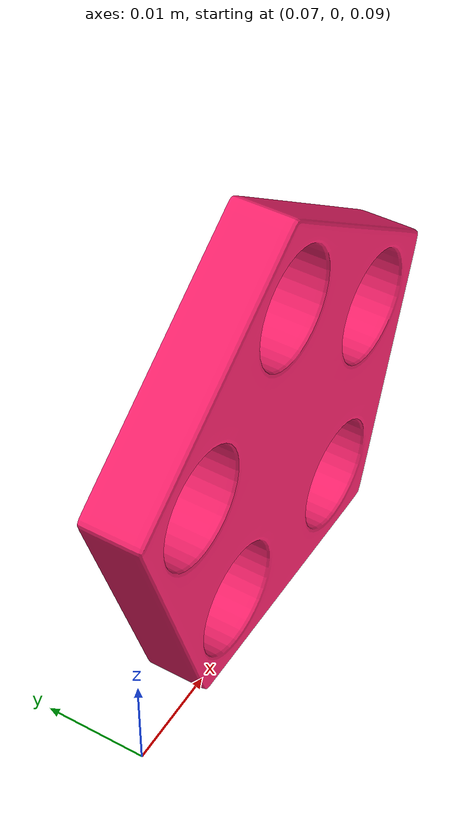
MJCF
<mujoco model="pentagon">
  <compiler angle="radian" meshdir="assets" texturedir="assets" autolimits="true"/>
  <default>
    <default class="visual">
      <geom group="2" type="mesh" contype="0" conaffinity="0"/>
    </default>
    <default class="collision">
      <geom group="3" type="mesh" mass="0" />
    </default>
    <default class="target_area">
      <geom group="3" type="mesh" contype="0" conaffinity="0" friction="0 0 0" solimp="0.99 0.99 0.000001" solref="0.000001 1" />
    </default>
  </default>
  <asset>
    <material name="Color_Pink" specular="0.5" shininess="0.25" rgba="1.000000 0.140523 0.438079 1.000000"/>
    <mesh file="pentagon.obj"/>
    <mesh file="pentagon_collision_0.obj"/>
    <mesh file="pentagon_collision_1.obj"/>
    <mesh file="pentagon_collision_2.obj"/>
    <mesh file="pentagon_collision_3.obj"/>
    <mesh file="pentagon_collision_4.obj"/>
    <mesh file="pentagon_collision_5.obj"/>
    <mesh file="pentagon_collision_6.obj"/>
    <mesh file="pentagon_collision_7.obj"/>
    <mesh file="pentagon_collision_8.obj"/>
    <mesh file="pentagon_collision_9.obj"/>
    <mesh file="pentagon_collision_10.obj"/>
    <mesh file="pentagon_collision_11.obj"/>
    <mesh file="pentagon_collision_12.obj"/>
    <mesh file="pentagon_collision_13.obj"/>
    <mesh file="pentagon_collision_14.obj"/>
    <mesh file="pentagon_collision_15.obj"/>
    <mesh file="pentagon_collision_16.obj"/>
    <mesh file="pentagon_collision_17.obj"/>
    <mesh file="pentagon_collision_18.obj"/>
    <mesh file="pentagon_collision_19.obj"/>
    <mesh file="pentagon_collision_20.obj"/>
    <mesh file="pentagon_collision_21.obj"/>
    <mesh file="pentagon_collision_22.obj"/>
    <mesh file="pentagon_collision_23.obj"/>
    <mesh file="pentagon_collision_24.obj"/>
    <mesh file="pentagon_collision_25.obj"/>
    <mesh file="pentagon_collision_26.obj"/>
    <mesh file="pentagon_collision_27.obj"/>
    <mesh file="pentagon_collision_28.obj"/>
    <mesh file="pentagon_collision_29.obj"/>
    <mesh file="pentagon_collision_30.obj"/>
    <mesh file="pentagon_collision_31.obj"/>
    <mesh file="pentagon_collision_32.obj"/>
    <mesh file="pentagon_collision_33.obj"/>
    <mesh file="pentagon_collision_34.obj"/>
    <mesh file="pentagon_collision_35.obj"/>
    <mesh file="pentagon_collision_36.obj"/>
    <mesh file="pentagon_collision_37.obj"/>
    <mesh file="pentagon_collision_38.obj"/>
    <mesh file="pentagon_collision_39.obj"/>
    <mesh file="pentagon_collision_40.obj"/>
    <mesh file="pentagon_collision_41.obj"/>
    <mesh file="pentagon_collision_42.obj"/>
    <mesh file="pentagon_collision_43.obj"/>
    <mesh file="pentagon_collision_44.obj"/>
    <mesh file="pentagon_collision_45.obj"/>
    <mesh file="pentagon_collision_46.obj"/>
    <mesh file="pentagon_collision_47.obj"/>
    <mesh file="pentagon_collision_48.obj"/>
    <mesh file="pentagon_collision_49.obj"/>
    <mesh file="pentagon_collision_50.obj"/>
    <mesh file="pentagon_collision_51.obj"/>
    <mesh file="pentagon_collision_52.obj"/>
    <mesh file="pentagon_collision_53.obj"/>
    <mesh file="pentagon_collision_54.obj"/>
    <mesh file="pentagon_collision_55.obj"/>
    <mesh file="pentagon_collision_56.obj"/>
    <mesh file="pentagon_collision_57.obj"/>
    <mesh file="pentagon_collision_58.obj"/>
    <mesh file="pentagon_collision_59.obj"/>
    <mesh file="pentagon_collision_60.obj"/>
    <mesh file="pentagon_collision_61.obj"/>
    <mesh file="pentagon_collision_62.obj"/>
    <mesh file="pentagon_collision_63.obj"/>
    <mesh file="pentagon_collision_64.obj"/>
    <mesh file="pentagon_collision_65.obj"/>
    <mesh file="pentagon_collision_66.obj"/>
    <mesh file="pentagon_collision_67.obj"/>
    <mesh file="pentagon_collision_68.obj"/>
    <mesh file="pentagon_collision_69.obj"/>
    <mesh file="pentagon_collision_70.obj"/>
    <mesh file="pentagon_collision_71.obj"/>
    <mesh file="pentagon_collision_72.obj"/>
    <mesh file="pentagon_collision_73.obj"/>
    <mesh file="pentagon_collision_74.obj"/>
    <mesh file="pentagon_collision_75.obj"/>
    <mesh file="pentagon_collision_76.obj"/>
    <mesh file="pentagon_collision_77.obj"/>
    <mesh file="pentagon_collision_78.obj"/>
    <mesh file="pentagon_collision_79.obj"/>
    <mesh file="pentagon_collision_80.obj"/>
    <mesh file="pentagon_collision_81.obj"/>
    <mesh file="pentagon_collision_82.obj"/>
  </asset>
  <worldbody>
    <body name="pentagon">

    <body name="hole_site">
      <geom name="hole_site_1" type="cylinder" size=".006 .002 .04" pos=".087 0.0035 0.095" euler="1.5708 0 0" rgba="1 1 0 0" class="target_area"/>
      <geom name="hole_site_2" type="cylinder" size=".006 .002 .04" pos=".105 0.0035 0.095" euler="1.5708 0 0" rgba="1 1 0 0" class="target_area"/>
      <geom name="hole_site_3" type="cylinder" size=".006 .002 .04" pos=".112 0.0035 0.113" euler="1.5708 0 0" rgba="1 1 0 0" class="target_area"/>
      <geom name="hole_site_4" type="cylinder" size=".006 .002 .04" pos=".081 0.0035 0.113" euler="1.5708 0 0" rgba="1 1 0 0" class="target_area"/>
      <geom name="hole_site_5" type="cylinder" size=".006 .002 .04" pos=".097 0.0035 0.124" euler="1.5708 0 0" rgba="1 1 0 0" class="target_area"/>
    </body>

      <geom material="Color_Pink" mesh="pentagon" class="visual"/>
      <geom mesh="pentagon_collision_0" rgba="0.18928736783596523 0.21415381072380602 0.7347727286566446 1" class="collision"/>
      <geom mesh="pentagon_collision_1" rgba="0.3953351936518602 0.31533536327007916 0.33839745028297397 1" class="collision"/>
      <geom mesh="pentagon_collision_2" rgba="0.40501064774713125 0.8578350275745369 0.19308799989157854 1" class="collision"/>
      <geom mesh="pentagon_collision_3" rgba="0.187754265202824 0.2692498616944232 0.7982593675627317 1" class="collision"/>
      <geom mesh="pentagon_collision_4" rgba="0.015284037470366663 0.037255536969716396 0.09968941513821217 1" class="collision"/>
      <geom mesh="pentagon_collision_5" rgba="0.5589759687227656 0.8243027735942786 0.393662466323932 1" class="collision"/>
      <geom mesh="pentagon_collision_6" rgba="0.577750405415954 0.8682212651271172 0.9650188090582833 1" class="collision"/>
      <geom mesh="pentagon_collision_7" rgba="0.6751403992376878 0.15944912715965465 0.5441896761645553 1" class="collision"/>
      <geom mesh="pentagon_collision_8" rgba="0.5886350419247985 0.3228515242615885 0.7502169561273717 1" class="collision"/>
      <geom mesh="pentagon_collision_9" rgba="0.43009728870202457 0.6625678985237822 0.7348797824900674 1" class="collision"/>
      <geom mesh="pentagon_collision_10" rgba="0.6700582874707223 0.7397694491166976 0.09937206714187385 1" class="collision"/>
      <geom mesh="pentagon_collision_11" rgba="0.45180145976493014 0.5414755393359151 0.18012309893916434 1" class="collision"/>
      <geom mesh="pentagon_collision_12" rgba="0.02652685971005586 0.22476962885340446 0.6984704591816585 1" class="collision"/>
      <geom mesh="pentagon_collision_13" rgba="0.28629594270979897 0.4278796702856812 0.7844888047856409 1" class="collision"/>
      <geom mesh="pentagon_collision_14" rgba="0.5472500655367175 0.6452537014214424 0.030681546238285562 1" class="collision"/>
      <geom mesh="pentagon_collision_15" rgba="0.828761628963699 0.5755416835068663 0.5961342099412773 1" class="collision"/>
      <geom mesh="pentagon_collision_16" rgba="0.996298861826532 0.2628383932830316 0.8380581867662852 1" class="collision"/>
      <geom mesh="pentagon_collision_17" rgba="0.22998242535438607 0.8935204269709209 0.06142060966005736 1" class="collision"/>
      <geom mesh="pentagon_collision_18" rgba="0.1938687700239281 0.23267088414761017 0.5243611910601628 1" class="collision"/>
      <geom mesh="pentagon_collision_19" rgba="0.3826804598425376 0.5985453878316561 0.9722144250711796 1" class="collision"/>
      <geom mesh="pentagon_collision_20" rgba="0.01339018232672462 0.9135416950928236 0.7235443701255097 1" class="collision"/>
      <geom mesh="pentagon_collision_21" rgba="0.550412320240376 0.4626812956453623 0.14380104915119285 1" class="collision"/>
      <geom mesh="pentagon_collision_22" rgba="0.0010956090452824974 0.6021069001795402 0.6225694133146608 1" class="collision"/>
      <geom mesh="pentagon_collision_23" rgba="0.5265450134979686 0.62069867242874 0.3223758018199395 1" class="collision"/>
      <geom mesh="pentagon_collision_24" rgba="0.42134971811767974 0.7023573913118693 0.686901521872944 1" class="collision"/>
      <geom mesh="pentagon_collision_25" rgba="0.9047797298914522 0.37066149884470645 0.4455877081219375 1" class="collision"/>
      <geom mesh="pentagon_collision_26" rgba="0.5655404914079926 0.49866381398637016 0.7151788613329637 1" class="collision"/>
      <geom mesh="pentagon_collision_27" rgba="0.8619846552423392 0.37575077041740623 0.9876890372527862 1" class="collision"/>
      <geom mesh="pentagon_collision_28" rgba="0.7560203550191913 0.9911771970865871 0.9735694921935311 1" class="collision"/>
      <geom mesh="pentagon_collision_29" rgba="0.6142865501696575 0.326234711209041 0.3690020283814057 1" class="collision"/>
      <geom mesh="pentagon_collision_30" rgba="0.8225792995022131 0.027148539795263105 0.39912162451149 1" class="collision"/>
      <geom mesh="pentagon_collision_31" rgba="0.11245966863787482 0.8491940803463349 0.09160526280421177 1" class="collision"/>
      <geom mesh="pentagon_collision_32" rgba="0.8789401754531031 0.5434124089640888 0.04753962201397721 1" class="collision"/>
      <geom mesh="pentagon_collision_33" rgba="0.12234736457396578 0.2347844075944142 0.15356961640535405 1" class="collision"/>
      <geom mesh="pentagon_collision_34" rgba="0.3206819218114976 0.6805509047944114 0.3455964497162243 1" class="collision"/>
      <geom mesh="pentagon_collision_35" rgba="0.8499205474677503 0.7281431045015225 0.8286050500935276 1" class="collision"/>
      <geom mesh="pentagon_collision_36" rgba="0.23470492887738803 0.4465989500919907 0.1579837502175384 1" class="collision"/>
      <geom mesh="pentagon_collision_37" rgba="0.12698498141724845 0.7605430802471547 0.965572206617366 1" class="collision"/>
      <geom mesh="pentagon_collision_38" rgba="0.3616972137904969 0.9166125005168283 0.9538223607022162 1" class="collision"/>
      <geom mesh="pentagon_collision_39" rgba="0.20301923003496314 0.464359097881503 0.6789596263240635 1" class="collision"/>
      <geom mesh="pentagon_collision_40" rgba="0.9431568043281646 0.0880564214159365 0.07282351956714206 1" class="collision"/>
      <geom mesh="pentagon_collision_41" rgba="0.9642896365424982 0.672538605510178 0.9098956756407487 1" class="collision"/>
      <geom mesh="pentagon_collision_42" rgba="0.9920509723117037 0.07768745122764498 0.3234188631332936 1" class="collision"/>
      <geom mesh="pentagon_collision_43" rgba="0.988127559676156 0.9723863434343124 0.9107736941892961 1" class="collision"/>
      <geom mesh="pentagon_collision_44" rgba="0.1598665350168742 0.6366601709184323 0.14246322684468815 1" class="collision"/>
      <geom mesh="pentagon_collision_45" rgba="0.025491508770058124 0.8397364860543786 0.5404026068131519 1" class="collision"/>
      <geom mesh="pentagon_collision_46" rgba="0.4418081189474581 0.17488745800964622 0.9291444596943365 1" class="collision"/>
      <geom mesh="pentagon_collision_47" rgba="0.26634526965730154 0.10334292470119621 0.2943585846797575 1" class="collision"/>
      <geom mesh="pentagon_collision_48" rgba="0.5037156460855682 0.09835521898705246 0.8967428712833939 1" class="collision"/>
      <geom mesh="pentagon_collision_49" rgba="0.812801270348986 0.9235765526092982 0.7247234948296813 1" class="collision"/>
      <geom mesh="pentagon_collision_50" rgba="0.22429962131362546 0.19506522863749687 0.1582816537766386 1" class="collision"/>
      <geom mesh="pentagon_collision_51" rgba="0.2889196984322179 0.28003526961899616 0.15134982641896377 1" class="collision"/>
      <geom mesh="pentagon_collision_52" rgba="0.4135972596706059 0.1668870469226259 0.78153376983594 1" class="collision"/>
      <geom mesh="pentagon_collision_53" rgba="0.3226738670988487 0.6488702451039231 0.42260541922215966 1" class="collision"/>
      <geom mesh="pentagon_collision_54" rgba="0.42788898311288925 0.4569861522930342 0.30309447844927695 1" class="collision"/>
      <geom mesh="pentagon_collision_55" rgba="0.94489159420773 0.6465717570569655 0.8232850139704859 1" class="collision"/>
      <geom mesh="pentagon_collision_56" rgba="0.02183163727832338 0.2744352662208477 0.9934373120025833 1" class="collision"/>
      <geom mesh="pentagon_collision_57" rgba="0.5686455039852568 0.21921874964608956 0.34512059103483994 1" class="collision"/>
      <geom mesh="pentagon_collision_58" rgba="0.6149690029964671 0.07097950700512667 0.695971628698522 1" class="collision"/>
      <geom mesh="pentagon_collision_59" rgba="0.5563023508844658 0.752449961107459 0.8958513296176112 1" class="collision"/>
      <geom mesh="pentagon_collision_60" rgba="0.15888826173119586 0.9979283395919103 0.9143693446488866 1" class="collision"/>
      <geom mesh="pentagon_collision_61" rgba="0.6172986313757678 0.7907296749229639 0.45260351353730865 1" class="collision"/>
      <geom mesh="pentagon_collision_62" rgba="0.3704651217295841 0.19378894384483036 0.8131303633903493 1" class="collision"/>
      <geom mesh="pentagon_collision_63" rgba="0.09122294935369679 0.4406225031843277 0.5648387332406254 1" class="collision"/>
      <geom mesh="pentagon_collision_64" rgba="0.21997953487277844 0.6629929121562067 0.8455579494097891 1" class="collision"/>
      <geom mesh="pentagon_collision_65" rgba="0.3188972261533336 0.7290522478182089 0.15431638083920385 1" class="collision"/>
      <geom mesh="pentagon_collision_66" rgba="0.9424937835532956 0.1184828710696243 0.8255455807439994 1" class="collision"/>
      <geom mesh="pentagon_collision_67" rgba="0.5048154203125063 0.5140144920222668 0.20938002474046413 1" class="collision"/>
      <geom mesh="pentagon_collision_68" rgba="0.3508779923310864 0.36504256111424715 0.5397818787340477 1" class="collision"/>
      <geom mesh="pentagon_collision_69" rgba="0.7385827859324201 0.8613639611326074 0.13209932239831756 1" class="collision"/>
      <geom mesh="pentagon_collision_70" rgba="0.3091964911390006 0.08344911510229824 0.009812342640589167 1" class="collision"/>
      <geom mesh="pentagon_collision_71" rgba="0.09043881150703403 0.7310987046693472 0.3930325742716816 1" class="collision"/>
      <geom mesh="pentagon_collision_72" rgba="0.5529365010228698 0.25107977194996756 0.011410157473473403 1" class="collision"/>
      <geom mesh="pentagon_collision_73" rgba="0.13764102650682153 0.08337656272365324 0.7667106233710398 1" class="collision"/>
      <geom mesh="pentagon_collision_74" rgba="0.567152405651727 0.5802181965424299 0.33434512984901055 1" class="collision"/>
      <geom mesh="pentagon_collision_75" rgba="0.9527707483848418 0.6982312000981755 0.6705078267971141 1" class="collision"/>
      <geom mesh="pentagon_collision_76" rgba="0.8507086840173327 0.9900988267399169 0.5337586760078438 1" class="collision"/>
      <geom mesh="pentagon_collision_77" rgba="0.19530967314406744 0.07425881847339133 0.550879722396106 1" class="collision"/>
      <geom mesh="pentagon_collision_78" rgba="0.42881727202143505 0.9808669354836762 0.2348986766748925 1" class="collision"/>
      <geom mesh="pentagon_collision_79" rgba="0.1268321961860991 0.9815333819182032 0.9733436727888117 1" class="collision"/>
      <geom mesh="pentagon_collision_80" rgba="0.27571497507244636 0.4132252203254779 0.7730565304439873 1" class="collision"/>
      <geom mesh="pentagon_collision_81" rgba="0.9512347015743011 0.8828375419417269 0.1335887196544554 1" class="collision"/>
      <geom mesh="pentagon_collision_82" rgba="0.1466015939161639 0.10681717577234418 0.951168594365745 1" class="collision"/>
    </body>
  </worldbody>
</mujoco>
